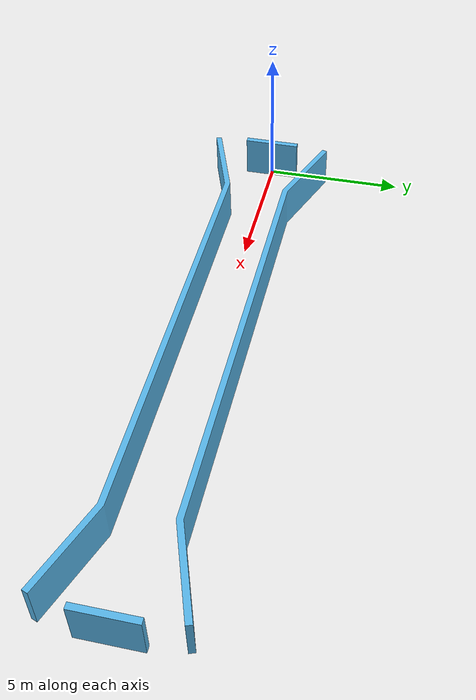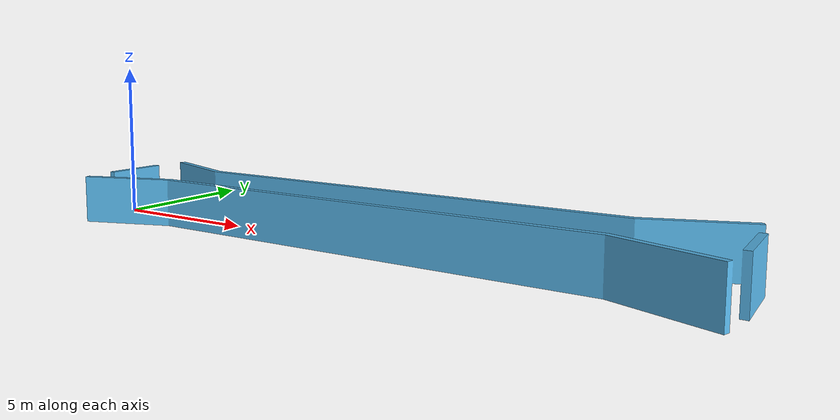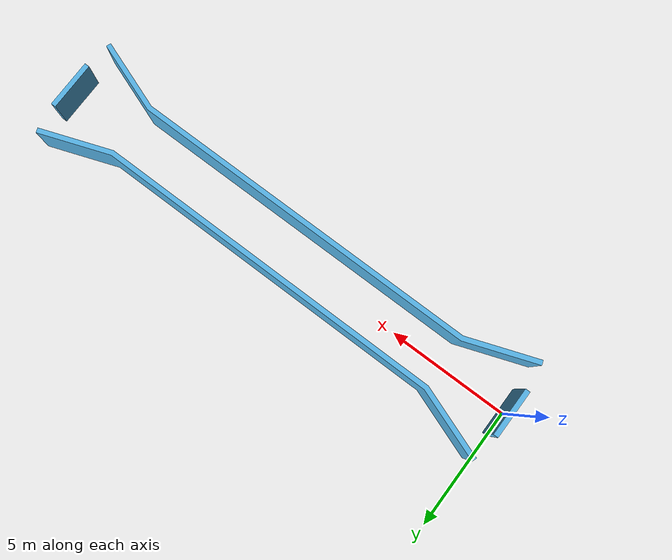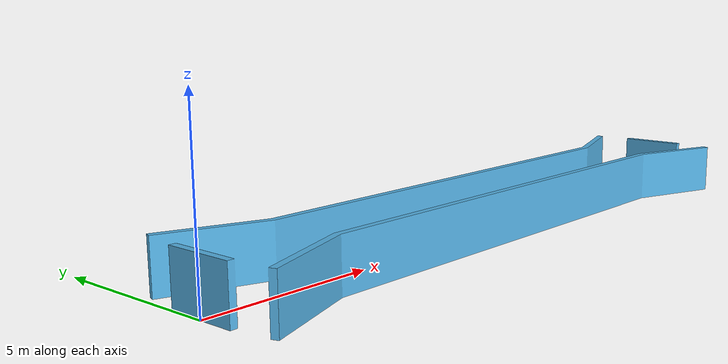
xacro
<?xml version="1.0"?>
<robot xmlns:xacro="http://www.ros.org/wiki/xacro"
       name="narrow_passage_2_cone">

  <xacro:include filename="$(find cob_gazebo_worlds)/urdf/common.xacro" />

  <xacro:macro name="narrow_passage_2_cone" params="name">

    <link name="world"/>

    <link name="world_link">
      <xacro:default_inertial/>
      <visual>
        <origin xyz="0 0 0" />
        <geometry>
          <mesh filename="package://msh_gazebo_worlds/Media/models/narrow_passage_2_cone.STL" />
        </geometry>
      </visual>
      <collision>
        <origin xyz="0 0 0" />
        <geometry>
          <mesh filename="package://msh_gazebo_worlds/Media/models/narrow_passage_2_cone.STL" />
        </geometry>
      </collision>
    </link>

    <joint name="world_joint" type="fixed">
      <origin xyz="0 0 0" rpy="0 0 0" />
      <parent link="world" />
      <child link="world_link" />
    </joint>

  </xacro:macro>

  <xacro:narrow_passage_2_cone name="narrow_passage_2_cone" />

</robot>
